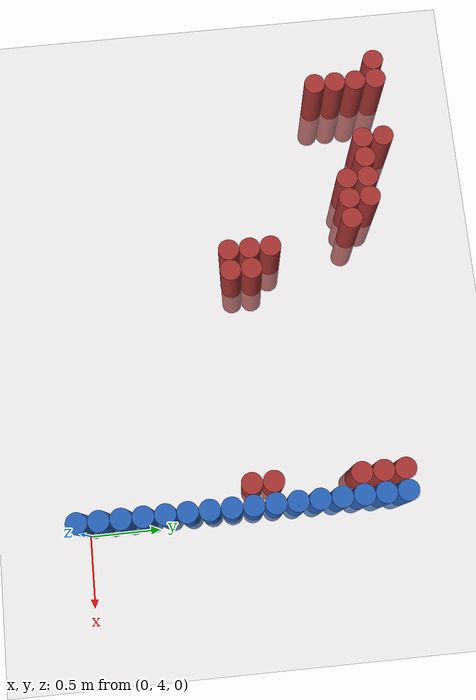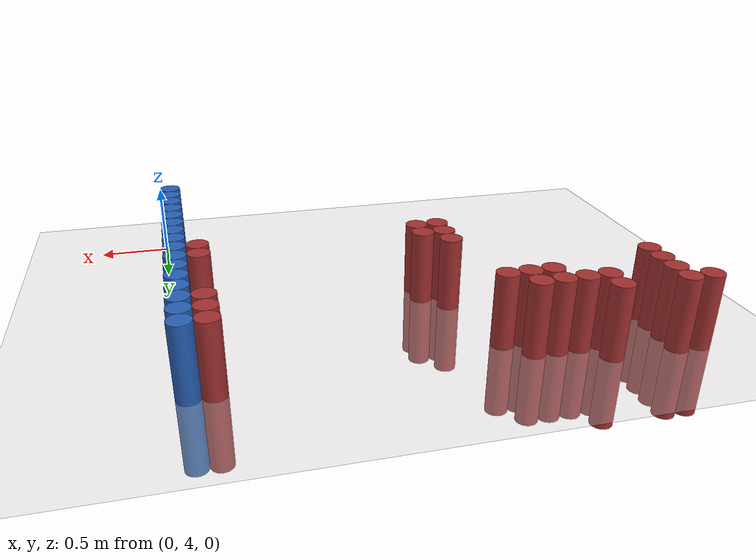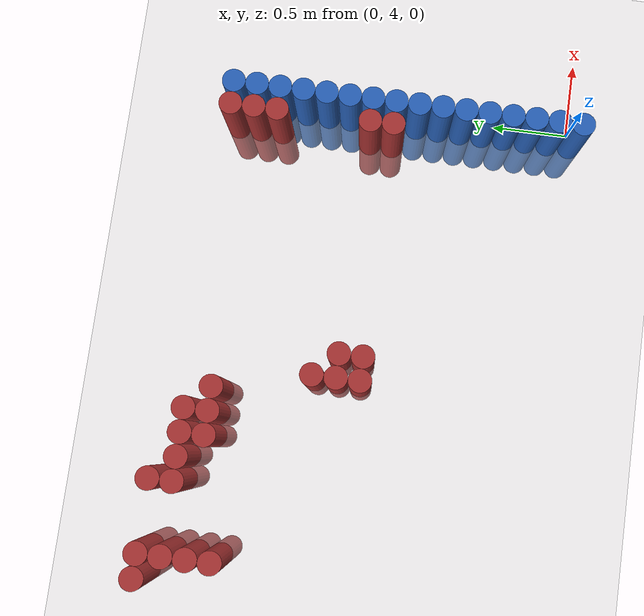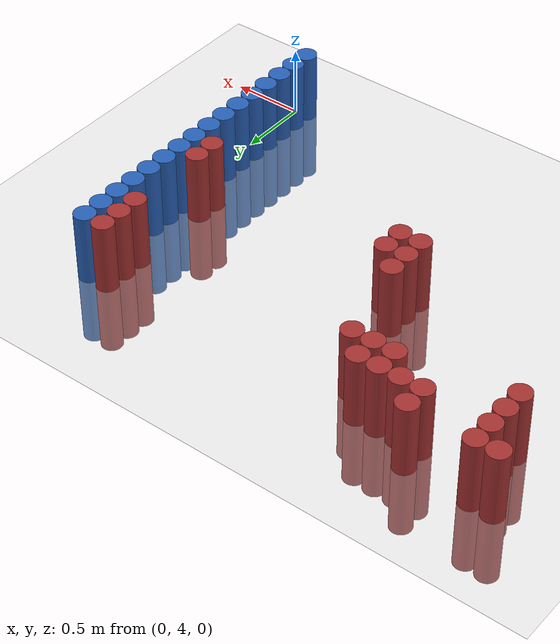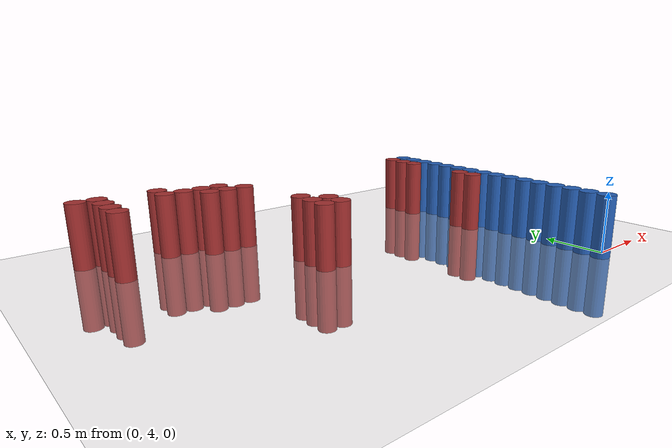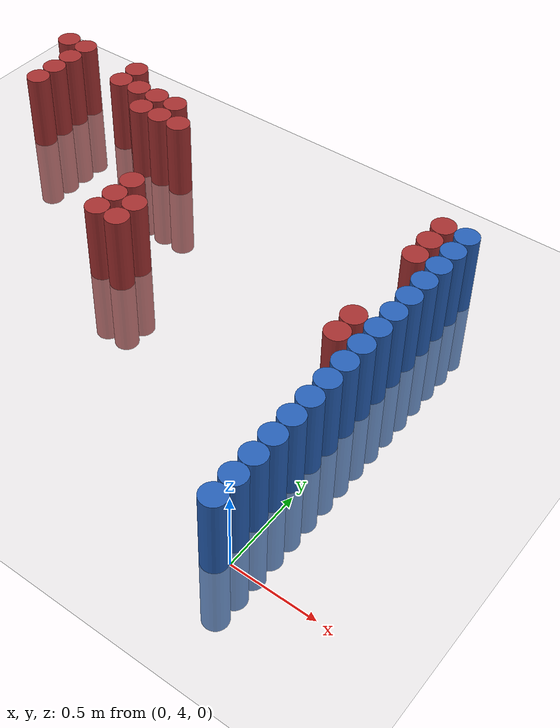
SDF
<sdf version="1.6">
 <world name="default">
  <model name="ground_plane">
   <static>1</static>
   <link name="link">
    <collision name="collision">
     <geometry><plane><normal>0 0 1</normal><size>100 100</size></plane></geometry>
     <surface><friction><ode><mu>100</mu><mu2>50</mu2></ode></friction></surface>
    </collision>
    <visual name="visual">
     <cast_shadows>0</cast_shadows>
     <geometry><plane><normal>0 0 1</normal><size>100 100</size></plane></geometry>
     <material>
      <script><uri>file://media/materials/scripts/gazebo.material</uri><name>Gazebo/Grey</name></script>
     </material>
    </visual>
   </link>
  </model>
  <model name="unit_cylinder_80">
   <static>1</static>
   <pose>-0.075000 3.975000 0.000000 0.000000 0.000000 0.000000</pose>
   <link name="link">
    <inertial>
     <mass>1</mass>
     <inertia><ixx>0.145833</ixx><ixy>0</ixy><ixz>0</ixz><iyy>0.145833</iyy><iyz>0</iyz><izz>0.125</izz></inertia>
    </inertial>
    <collision name="collision">
     <geometry><cylinder><radius>0.075000</radius><length>1</length></cylinder></geometry>
    </collision>
    <visual name="visual">
     <geometry><cylinder><radius>0.075000</radius><length>1</length></cylinder></geometry>
     <material>
      <ambient>0.152000 0.379000 0.720000 1</ambient>
      <diffuse>0.152000 0.379000 0.720000 1</diffuse>
     </material>
     <material>
      <script><name>Gazebo/Grey</name><uri>file://media/materials/scripts/gazebo.material</uri></script>
     </material>
    </visual>
    <sensor name="sensor_contact" type="contact"><contact><collision>collision</collision></contact></sensor>
   </link>
   <plugin filename="gz-sim-touchplugin-system" name="gz::sim::systems::TouchPlugin">
    <target>robot</target>
    <namespace>robot</namespace>
    <time>0.001</time>
    <enabled>true</enabled>
   </plugin>
  </model>
  <model name="unit_cylinder_82">
   <static>1</static>
   <pose>-0.075000 4.125000 0.000000 0.000000 0.000000 0.000000</pose>
   <link name="link">
    <inertial>
     <mass>1</mass>
     <inertia><ixx>0.145833</ixx><ixy>0</ixy><ixz>0</ixz><iyy>0.145833</iyy><iyz>0</iyz><izz>0.125</izz></inertia>
    </inertial>
    <collision name="collision">
     <geometry><cylinder><radius>0.075000</radius><length>1</length></cylinder></geometry>
    </collision>
    <visual name="visual">
     <geometry><cylinder><radius>0.075000</radius><length>1</length></cylinder></geometry>
     <material>
      <ambient>0.152000 0.379000 0.720000 1</ambient>
      <diffuse>0.152000 0.379000 0.720000 1</diffuse>
     </material>
     <material>
      <script><name>Gazebo/Grey</name><uri>file://media/materials/scripts/gazebo.material</uri></script>
     </material>
    </visual>
    <sensor name="sensor_contact" type="contact"><contact><collision>collision</collision></contact></sensor>
   </link>
   <plugin filename="gz-sim-touchplugin-system" name="gz::sim::systems::TouchPlugin">
    <target>robot</target>
    <namespace>robot</namespace>
    <time>0.001</time>
    <enabled>true</enabled>
   </plugin>
  </model>
  <model name="unit_cylinder_84">
   <static>1</static>
   <pose>-0.075000 4.275000 0.000000 0.000000 0.000000 0.000000</pose>
   <link name="link">
    <inertial>
     <mass>1</mass>
     <inertia><ixx>0.145833</ixx><ixy>0</ixy><ixz>0</ixz><iyy>0.145833</iyy><iyz>0</iyz><izz>0.125</izz></inertia>
    </inertial>
    <collision name="collision">
     <geometry><cylinder><radius>0.075000</radius><length>1</length></cylinder></geometry>
    </collision>
    <visual name="visual">
     <geometry><cylinder><radius>0.075000</radius><length>1</length></cylinder></geometry>
     <material>
      <ambient>0.152000 0.379000 0.720000 1</ambient>
      <diffuse>0.152000 0.379000 0.720000 1</diffuse>
     </material>
     <material>
      <script><name>Gazebo/Grey</name><uri>file://media/materials/scripts/gazebo.material</uri></script>
     </material>
    </visual>
    <sensor name="sensor_contact" type="contact"><contact><collision>collision</collision></contact></sensor>
   </link>
   <plugin filename="gz-sim-touchplugin-system" name="gz::sim::systems::TouchPlugin">
    <target>robot</target>
    <namespace>robot</namespace>
    <time>0.001</time>
    <enabled>true</enabled>
   </plugin>
  </model>
  <model name="unit_cylinder_86">
   <static>1</static>
   <pose>-0.075000 4.425000 0.000000 0.000000 0.000000 0.000000</pose>
   <link name="link">
    <inertial>
     <mass>1</mass>
     <inertia><ixx>0.145833</ixx><ixy>0</ixy><ixz>0</ixz><iyy>0.145833</iyy><iyz>0</iyz><izz>0.125</izz></inertia>
    </inertial>
    <collision name="collision">
     <geometry><cylinder><radius>0.075000</radius><length>1</length></cylinder></geometry>
    </collision>
    <visual name="visual">
     <geometry><cylinder><radius>0.075000</radius><length>1</length></cylinder></geometry>
     <material>
      <ambient>0.152000 0.379000 0.720000 1</ambient>
      <diffuse>0.152000 0.379000 0.720000 1</diffuse>
     </material>
     <material>
      <script><name>Gazebo/Grey</name><uri>file://media/materials/scripts/gazebo.material</uri></script>
     </material>
    </visual>
    <sensor name="sensor_contact" type="contact"><contact><collision>collision</collision></contact></sensor>
   </link>
   <plugin filename="gz-sim-touchplugin-system" name="gz::sim::systems::TouchPlugin">
    <target>robot</target>
    <namespace>robot</namespace>
    <time>0.001</time>
    <enabled>true</enabled>
   </plugin>
  </model>
  <model name="unit_cylinder_88">
   <static>1</static>
   <pose>-0.075000 4.575000 0.000000 0.000000 0.000000 0.000000</pose>
   <link name="link">
    <inertial>
     <mass>1</mass>
     <inertia><ixx>0.145833</ixx><ixy>0</ixy><ixz>0</ixz><iyy>0.145833</iyy><iyz>0</iyz><izz>0.125</izz></inertia>
    </inertial>
    <collision name="collision">
     <geometry><cylinder><radius>0.075000</radius><length>1</length></cylinder></geometry>
    </collision>
    <visual name="visual">
     <geometry><cylinder><radius>0.075000</radius><length>1</length></cylinder></geometry>
     <material>
      <ambient>0.152000 0.379000 0.720000 1</ambient>
      <diffuse>0.152000 0.379000 0.720000 1</diffuse>
     </material>
     <material>
      <script><name>Gazebo/Grey</name><uri>file://media/materials/scripts/gazebo.material</uri></script>
     </material>
    </visual>
    <sensor name="sensor_contact" type="contact"><contact><collision>collision</collision></contact></sensor>
   </link>
   <plugin filename="gz-sim-touchplugin-system" name="gz::sim::systems::TouchPlugin">
    <target>robot</target>
    <namespace>robot</namespace>
    <time>0.001</time>
    <enabled>true</enabled>
   </plugin>
  </model>
  <model name="unit_cylinder_90">
   <static>1</static>
   <pose>-0.075000 4.725000 0.000000 0.000000 0.000000 0.000000</pose>
   <link name="link">
    <inertial>
     <mass>1</mass>
     <inertia><ixx>0.145833</ixx><ixy>0</ixy><ixz>0</ixz><iyy>0.145833</iyy><iyz>0</iyz><izz>0.125</izz></inertia>
    </inertial>
    <collision name="collision">
     <geometry><cylinder><radius>0.075000</radius><length>1</length></cylinder></geometry>
    </collision>
    <visual name="visual">
     <geometry><cylinder><radius>0.075000</radius><length>1</length></cylinder></geometry>
     <material>
      <ambient>0.152000 0.379000 0.720000 1</ambient>
      <diffuse>0.152000 0.379000 0.720000 1</diffuse>
     </material>
     <material>
      <script><name>Gazebo/Grey</name><uri>file://media/materials/scripts/gazebo.material</uri></script>
     </material>
    </visual>
    <sensor name="sensor_contact" type="contact"><contact><collision>collision</collision></contact></sensor>
   </link>
   <plugin filename="gz-sim-touchplugin-system" name="gz::sim::systems::TouchPlugin">
    <target>robot</target>
    <namespace>robot</namespace>
    <time>0.001</time>
    <enabled>true</enabled>
   </plugin>
  </model>
  <model name="unit_cylinder_92">
   <static>1</static>
   <pose>-0.075000 4.875000 0.000000 0.000000 0.000000 0.000000</pose>
   <link name="link">
    <inertial>
     <mass>1</mass>
     <inertia><ixx>0.145833</ixx><ixy>0</ixy><ixz>0</ixz><iyy>0.145833</iyy><iyz>0</iyz><izz>0.125</izz></inertia>
    </inertial>
    <collision name="collision">
     <geometry><cylinder><radius>0.075000</radius><length>1</length></cylinder></geometry>
    </collision>
    <visual name="visual">
     <geometry><cylinder><radius>0.075000</radius><length>1</length></cylinder></geometry>
     <material>
      <ambient>0.152000 0.379000 0.720000 1</ambient>
      <diffuse>0.152000 0.379000 0.720000 1</diffuse>
     </material>
     <material>
      <script><name>Gazebo/Grey</name><uri>file://media/materials/scripts/gazebo.material</uri></script>
     </material>
    </visual>
    <sensor name="sensor_contact" type="contact"><contact><collision>collision</collision></contact></sensor>
   </link>
   <plugin filename="gz-sim-touchplugin-system" name="gz::sim::systems::TouchPlugin">
    <target>robot</target>
    <namespace>robot</namespace>
    <time>0.001</time>
    <enabled>true</enabled>
   </plugin>
  </model>
  <model name="unit_cylinder_94">
   <static>1</static>
   <pose>-0.075000 5.025000 0.000000 0.000000 0.000000 0.000000</pose>
   <link name="link">
    <inertial>
     <mass>1</mass>
     <inertia><ixx>0.145833</ixx><ixy>0</ixy><ixz>0</ixz><iyy>0.145833</iyy><iyz>0</iyz><izz>0.125</izz></inertia>
    </inertial>
    <collision name="collision">
     <geometry><cylinder><radius>0.075000</radius><length>1</length></cylinder></geometry>
    </collision>
    <visual name="visual">
     <geometry><cylinder><radius>0.075000</radius><length>1</length></cylinder></geometry>
     <material>
      <ambient>0.152000 0.379000 0.720000 1</ambient>
      <diffuse>0.152000 0.379000 0.720000 1</diffuse>
     </material>
     <material>
      <script><name>Gazebo/Grey</name><uri>file://media/materials/scripts/gazebo.material</uri></script>
     </material>
    </visual>
    <sensor name="sensor_contact" type="contact"><contact><collision>collision</collision></contact></sensor>
   </link>
   <plugin filename="gz-sim-touchplugin-system" name="gz::sim::systems::TouchPlugin">
    <target>robot</target>
    <namespace>robot</namespace>
    <time>0.001</time>
    <enabled>true</enabled>
   </plugin>
  </model>
  <model name="unit_cylinder_197">
   <static>1</static>
   <pose>-3.225000 6.375000 0.000000 0.000000 0.000000 0.000000</pose>
   <link name="link">
    <inertial>
     <mass>1</mass>
     <inertia><ixx>0.145833</ixx><ixy>0</ixy><ixz>0</ixz><iyy>0.145833</iyy><iyz>0</iyz><izz>0.125</izz></inertia>
    </inertial>
    <collision name="collision">
     <geometry><cylinder><radius>0.075000</radius><length>1</length></cylinder></geometry>
    </collision>
    <visual name="visual">
     <geometry><cylinder><radius>0.075000</radius><length>1</length></cylinder></geometry>
     <material>
      <ambient>0.648000 0.192000 0.192000 1</ambient>
      <diffuse>0.648000 0.192000 0.192000 1</diffuse>
     </material>
     <material>
      <script><name>Gazebo/Grey</name><uri>file://media/materials/scripts/gazebo.material</uri></script>
     </material>
    </visual>
    <sensor name="sensor_contact" type="contact"><contact><collision>collision</collision></contact></sensor>
   </link>
   <plugin filename="gz-sim-touchplugin-system" name="gz::sim::systems::TouchPlugin">
    <target>robot</target>
    <namespace>robot</namespace>
    <time>0.001</time>
    <enabled>true</enabled>
   </plugin>
  </model>
  <model name="unit_cylinder_205">
   <static>1</static>
   <pose>-3.075000 5.925000 0.000000 0.000000 0.000000 0.000000</pose>
   <link name="link">
    <inertial>
     <mass>1</mass>
     <inertia><ixx>0.145833</ixx><ixy>0</ixy><ixz>0</ixz><iyy>0.145833</iyy><iyz>0</iyz><izz>0.125</izz></inertia>
    </inertial>
    <collision name="collision">
     <geometry><cylinder><radius>0.075000</radius><length>1</length></cylinder></geometry>
    </collision>
    <visual name="visual">
     <geometry><cylinder><radius>0.075000</radius><length>1</length></cylinder></geometry>
     <material>
      <ambient>0.648000 0.192000 0.192000 1</ambient>
      <diffuse>0.648000 0.192000 0.192000 1</diffuse>
     </material>
     <material>
      <script><name>Gazebo/Grey</name><uri>file://media/materials/scripts/gazebo.material</uri></script>
     </material>
    </visual>
    <sensor name="sensor_contact" type="contact"><contact><collision>collision</collision></contact></sensor>
   </link>
   <plugin filename="gz-sim-touchplugin-system" name="gz::sim::systems::TouchPlugin">
    <target>robot</target>
    <namespace>robot</namespace>
    <time>0.001</time>
    <enabled>true</enabled>
   </plugin>
  </model>
  <model name="unit_cylinder_206">
   <static>1</static>
   <pose>-3.075000 6.075000 0.000000 0.000000 0.000000 0.000000</pose>
   <link name="link">
    <inertial>
     <mass>1</mass>
     <inertia><ixx>0.145833</ixx><ixy>0</ixy><ixz>0</ixz><iyy>0.145833</iyy><iyz>0</iyz><izz>0.125</izz></inertia>
    </inertial>
    <collision name="collision">
     <geometry><cylinder><radius>0.075000</radius><length>1</length></cylinder></geometry>
    </collision>
    <visual name="visual">
     <geometry><cylinder><radius>0.075000</radius><length>1</length></cylinder></geometry>
     <material>
      <ambient>0.648000 0.192000 0.192000 1</ambient>
      <diffuse>0.648000 0.192000 0.192000 1</diffuse>
     </material>
     <material>
      <script><name>Gazebo/Grey</name><uri>file://media/materials/scripts/gazebo.material</uri></script>
     </material>
    </visual>
    <sensor name="sensor_contact" type="contact"><contact><collision>collision</collision></contact></sensor>
   </link>
   <plugin filename="gz-sim-touchplugin-system" name="gz::sim::systems::TouchPlugin">
    <target>robot</target>
    <namespace>robot</namespace>
    <time>0.001</time>
    <enabled>true</enabled>
   </plugin>
  </model>
  <model name="unit_cylinder_207">
   <static>1</static>
   <pose>-3.075000 6.225000 0.000000 0.000000 0.000000 0.000000</pose>
   <link name="link">
    <inertial>
     <mass>1</mass>
     <inertia><ixx>0.145833</ixx><ixy>0</ixy><ixz>0</ixz><iyy>0.145833</iyy><iyz>0</iyz><izz>0.125</izz></inertia>
    </inertial>
    <collision name="collision">
     <geometry><cylinder><radius>0.075000</radius><length>1</length></cylinder></geometry>
    </collision>
    <visual name="visual">
     <geometry><cylinder><radius>0.075000</radius><length>1</length></cylinder></geometry>
     <material>
      <ambient>0.648000 0.192000 0.192000 1</ambient>
      <diffuse>0.648000 0.192000 0.192000 1</diffuse>
     </material>
     <material>
      <script><name>Gazebo/Grey</name><uri>file://media/materials/scripts/gazebo.material</uri></script>
     </material>
    </visual>
    <sensor name="sensor_contact" type="contact"><contact><collision>collision</collision></contact></sensor>
   </link>
   <plugin filename="gz-sim-touchplugin-system" name="gz::sim::systems::TouchPlugin">
    <target>robot</target>
    <namespace>robot</namespace>
    <time>0.001</time>
    <enabled>true</enabled>
   </plugin>
  </model>
  <model name="unit_cylinder_208">
   <static>1</static>
   <pose>-3.075000 6.375000 0.000000 0.000000 0.000000 0.000000</pose>
   <link name="link">
    <inertial>
     <mass>1</mass>
     <inertia><ixx>0.145833</ixx><ixy>0</ixy><ixz>0</ixz><iyy>0.145833</iyy><iyz>0</iyz><izz>0.125</izz></inertia>
    </inertial>
    <collision name="collision">
     <geometry><cylinder><radius>0.075000</radius><length>1</length></cylinder></geometry>
    </collision>
    <visual name="visual">
     <geometry><cylinder><radius>0.075000</radius><length>1</length></cylinder></geometry>
     <material>
      <ambient>0.648000 0.192000 0.192000 1</ambient>
      <diffuse>0.648000 0.192000 0.192000 1</diffuse>
     </material>
     <material>
      <script><name>Gazebo/Grey</name><uri>file://media/materials/scripts/gazebo.material</uri></script>
     </material>
    </visual>
    <sensor name="sensor_contact" type="contact"><contact><collision>collision</collision></contact></sensor>
   </link>
   <plugin filename="gz-sim-touchplugin-system" name="gz::sim::systems::TouchPlugin">
    <target>robot</target>
    <namespace>robot</namespace>
    <time>0.001</time>
    <enabled>true</enabled>
   </plugin>
  </model>
  <model name="unit_cylinder_225">
   <static>1</static>
   <pose>-2.625000 6.225000 0.000000 0.000000 0.000000 0.000000</pose>
   <link name="link">
    <inertial>
     <mass>1</mass>
     <inertia><ixx>0.145833</ixx><ixy>0</ixy><ixz>0</ixz><iyy>0.145833</iyy><iyz>0</iyz><izz>0.125</izz></inertia>
    </inertial>
    <collision name="collision">
     <geometry><cylinder><radius>0.075000</radius><length>1</length></cylinder></geometry>
    </collision>
    <visual name="visual">
     <geometry><cylinder><radius>0.075000</radius><length>1</length></cylinder></geometry>
     <material>
      <ambient>0.648000 0.192000 0.192000 1</ambient>
      <diffuse>0.648000 0.192000 0.192000 1</diffuse>
     </material>
     <material>
      <script><name>Gazebo/Grey</name><uri>file://media/materials/scripts/gazebo.material</uri></script>
     </material>
    </visual>
    <sensor name="sensor_contact" type="contact"><contact><collision>collision</collision></contact></sensor>
   </link>
   <plugin filename="gz-sim-touchplugin-system" name="gz::sim::systems::TouchPlugin">
    <target>robot</target>
    <namespace>robot</namespace>
    <time>0.001</time>
    <enabled>true</enabled>
   </plugin>
  </model>
  <model name="unit_cylinder_226">
   <static>1</static>
   <pose>-2.625000 6.375000 0.000000 0.000000 0.000000 0.000000</pose>
   <link name="link">
    <inertial>
     <mass>1</mass>
     <inertia><ixx>0.145833</ixx><ixy>0</ixy><ixz>0</ixz><iyy>0.145833</iyy><iyz>0</iyz><izz>0.125</izz></inertia>
    </inertial>
    <collision name="collision">
     <geometry><cylinder><radius>0.075000</radius><length>1</length></cylinder></geometry>
    </collision>
    <visual name="visual">
     <geometry><cylinder><radius>0.075000</radius><length>1</length></cylinder></geometry>
     <material>
      <ambient>0.648000 0.192000 0.192000 1</ambient>
      <diffuse>0.648000 0.192000 0.192000 1</diffuse>
     </material>
     <material>
      <script><name>Gazebo/Grey</name><uri>file://media/materials/scripts/gazebo.material</uri></script>
     </material>
    </visual>
    <sensor name="sensor_contact" type="contact"><contact><collision>collision</collision></contact></sensor>
   </link>
   <plugin filename="gz-sim-touchplugin-system" name="gz::sim::systems::TouchPlugin">
    <target>robot</target>
    <namespace>robot</namespace>
    <time>0.001</time>
    <enabled>true</enabled>
   </plugin>
  </model>
  <model name="unit_cylinder_235">
   <static>1</static>
   <pose>-2.475000 6.225000 0.000000 0.000000 0.000000 0.000000</pose>
   <link name="link">
    <inertial>
     <mass>1</mass>
     <inertia><ixx>0.145833</ixx><ixy>0</ixy><ixz>0</ixz><iyy>0.145833</iyy><iyz>0</iyz><izz>0.125</izz></inertia>
    </inertial>
    <collision name="collision">
     <geometry><cylinder><radius>0.075000</radius><length>1</length></cylinder></geometry>
    </collision>
    <visual name="visual">
     <geometry><cylinder><radius>0.075000</radius><length>1</length></cylinder></geometry>
     <material>
      <ambient>0.648000 0.192000 0.192000 1</ambient>
      <diffuse>0.648000 0.192000 0.192000 1</diffuse>
     </material>
     <material>
      <script><name>Gazebo/Grey</name><uri>file://media/materials/scripts/gazebo.material</uri></script>
     </material>
    </visual>
    <sensor name="sensor_contact" type="contact"><contact><collision>collision</collision></contact></sensor>
   </link>
   <plugin filename="gz-sim-touchplugin-system" name="gz::sim::systems::TouchPlugin">
    <target>robot</target>
    <namespace>robot</namespace>
    <time>0.001</time>
    <enabled>true</enabled>
   </plugin>
  </model>
  <model name="unit_cylinder_247">
   <static>1</static>
   <pose>-2.325000 6.075000 0.000000 0.000000 0.000000 0.000000</pose>
   <link name="link">
    <inertial>
     <mass>1</mass>
     <inertia><ixx>0.145833</ixx><ixy>0</ixy><ixz>0</ixz><iyy>0.145833</iyy><iyz>0</iyz><izz>0.125</izz></inertia>
    </inertial>
    <collision name="collision">
     <geometry><cylinder><radius>0.075000</radius><length>1</length></cylinder></geometry>
    </collision>
    <visual name="visual">
     <geometry><cylinder><radius>0.075000</radius><length>1</length></cylinder></geometry>
     <material>
      <ambient>0.648000 0.192000 0.192000 1</ambient>
      <diffuse>0.648000 0.192000 0.192000 1</diffuse>
     </material>
     <material>
      <script><name>Gazebo/Grey</name><uri>file://media/materials/scripts/gazebo.material</uri></script>
     </material>
    </visual>
    <sensor name="sensor_contact" type="contact"><contact><collision>collision</collision></contact></sensor>
   </link>
   <plugin filename="gz-sim-touchplugin-system" name="gz::sim::systems::TouchPlugin">
    <target>robot</target>
    <namespace>robot</namespace>
    <time>0.001</time>
    <enabled>true</enabled>
   </plugin>
  </model>
  <model name="unit_cylinder_248">
   <static>1</static>
   <pose>-2.325000 6.225000 0.000000 0.000000 0.000000 0.000000</pose>
   <link name="link">
    <inertial>
     <mass>1</mass>
     <inertia><ixx>0.145833</ixx><ixy>0</ixy><ixz>0</ixz><iyy>0.145833</iyy><iyz>0</iyz><izz>0.125</izz></inertia>
    </inertial>
    <collision name="collision">
     <geometry><cylinder><radius>0.075000</radius><length>1</length></cylinder></geometry>
    </collision>
    <visual name="visual">
     <geometry><cylinder><radius>0.075000</radius><length>1</length></cylinder></geometry>
     <material>
      <ambient>0.648000 0.192000 0.192000 1</ambient>
      <diffuse>0.648000 0.192000 0.192000 1</diffuse>
     </material>
     <material>
      <script><name>Gazebo/Grey</name><uri>file://media/materials/scripts/gazebo.material</uri></script>
     </material>
    </visual>
    <sensor name="sensor_contact" type="contact"><contact><collision>collision</collision></contact></sensor>
   </link>
   <plugin filename="gz-sim-touchplugin-system" name="gz::sim::systems::TouchPlugin">
    <target>robot</target>
    <namespace>robot</namespace>
    <time>0.001</time>
    <enabled>true</enabled>
   </plugin>
  </model>
  <model name="unit_cylinder_256">
   <static>1</static>
   <pose>-2.175000 6.075000 0.000000 0.000000 0.000000 0.000000</pose>
   <link name="link">
    <inertial>
     <mass>1</mass>
     <inertia><ixx>0.145833</ixx><ixy>0</ixy><ixz>0</ixz><iyy>0.145833</iyy><iyz>0</iyz><izz>0.125</izz></inertia>
    </inertial>
    <collision name="collision">
     <geometry><cylinder><radius>0.075000</radius><length>1</length></cylinder></geometry>
    </collision>
    <visual name="visual">
     <geometry><cylinder><radius>0.075000</radius><length>1</length></cylinder></geometry>
     <material>
      <ambient>0.648000 0.192000 0.192000 1</ambient>
      <diffuse>0.648000 0.192000 0.192000 1</diffuse>
     </material>
     <material>
      <script><name>Gazebo/Grey</name><uri>file://media/materials/scripts/gazebo.material</uri></script>
     </material>
    </visual>
    <sensor name="sensor_contact" type="contact"><contact><collision>collision</collision></contact></sensor>
   </link>
   <plugin filename="gz-sim-touchplugin-system" name="gz::sim::systems::TouchPlugin">
    <target>robot</target>
    <namespace>robot</namespace>
    <time>0.001</time>
    <enabled>true</enabled>
   </plugin>
  </model>
  <model name="unit_cylinder_257">
   <static>1</static>
   <pose>-2.175000 6.225000 0.000000 0.000000 0.000000 0.000000</pose>
   <link name="link">
    <inertial>
     <mass>1</mass>
     <inertia><ixx>0.145833</ixx><ixy>0</ixy><ixz>0</ixz><iyy>0.145833</iyy><iyz>0</iyz><izz>0.125</izz></inertia>
    </inertial>
    <collision name="collision">
     <geometry><cylinder><radius>0.075000</radius><length>1</length></cylinder></geometry>
    </collision>
    <visual name="visual">
     <geometry><cylinder><radius>0.075000</radius><length>1</length></cylinder></geometry>
     <material>
      <ambient>0.648000 0.192000 0.192000 1</ambient>
      <diffuse>0.648000 0.192000 0.192000 1</diffuse>
     </material>
     <material>
      <script><name>Gazebo/Grey</name><uri>file://media/materials/scripts/gazebo.material</uri></script>
     </material>
    </visual>
    <sensor name="sensor_contact" type="contact"><contact><collision>collision</collision></contact></sensor>
   </link>
   <plugin filename="gz-sim-touchplugin-system" name="gz::sim::systems::TouchPlugin">
    <target>robot</target>
    <namespace>robot</namespace>
    <time>0.001</time>
    <enabled>true</enabled>
   </plugin>
  </model>
  <model name="unit_cylinder_265">
   <static>1</static>
   <pose>-2.025000 6.075000 0.000000 0.000000 0.000000 0.000000</pose>
   <link name="link">
    <inertial>
     <mass>1</mass>
     <inertia><ixx>0.145833</ixx><ixy>0</ixy><ixz>0</ixz><iyy>0.145833</iyy><iyz>0</iyz><izz>0.125</izz></inertia>
    </inertial>
    <collision name="collision">
     <geometry><cylinder><radius>0.075000</radius><length>1</length></cylinder></geometry>
    </collision>
    <visual name="visual">
     <geometry><cylinder><radius>0.075000</radius><length>1</length></cylinder></geometry>
     <material>
      <ambient>0.648000 0.192000 0.192000 1</ambient>
      <diffuse>0.648000 0.192000 0.192000 1</diffuse>
     </material>
     <material>
      <script><name>Gazebo/Grey</name><uri>file://media/materials/scripts/gazebo.material</uri></script>
     </material>
    </visual>
    <sensor name="sensor_contact" type="contact"><contact><collision>collision</collision></contact></sensor>
   </link>
   <plugin filename="gz-sim-touchplugin-system" name="gz::sim::systems::TouchPlugin">
    <target>robot</target>
    <namespace>robot</namespace>
    <time>0.001</time>
    <enabled>true</enabled>
   </plugin>
  </model>
  <model name="unit_cylinder_274">
   <static>1</static>
   <pose>-1.875000 5.175000 0.000000 0.000000 0.000000 0.000000</pose>
   <link name="link">
    <inertial>
     <mass>1</mass>
     <inertia><ixx>0.145833</ixx><ixy>0</ixy><ixz>0</ixz><iyy>0.145833</iyy><iyz>0</iyz><izz>0.125</izz></inertia>
    </inertial>
    <collision name="collision">
     <geometry><cylinder><radius>0.075000</radius><length>1</length></cylinder></geometry>
    </collision>
    <visual name="visual">
     <geometry><cylinder><radius>0.075000</radius><length>1</length></cylinder></geometry>
     <material>
      <ambient>0.648000 0.192000 0.192000 1</ambient>
      <diffuse>0.648000 0.192000 0.192000 1</diffuse>
     </material>
     <material>
      <script><name>Gazebo/Grey</name><uri>file://media/materials/scripts/gazebo.material</uri></script>
     </material>
    </visual>
    <sensor name="sensor_contact" type="contact"><contact><collision>collision</collision></contact></sensor>
   </link>
   <plugin filename="gz-sim-touchplugin-system" name="gz::sim::systems::TouchPlugin">
    <target>robot</target>
    <namespace>robot</namespace>
    <time>0.001</time>
    <enabled>true</enabled>
   </plugin>
  </model>
  <model name="unit_cylinder_275">
   <static>1</static>
   <pose>-1.875000 5.325000 0.000000 0.000000 0.000000 0.000000</pose>
   <link name="link">
    <inertial>
     <mass>1</mass>
     <inertia><ixx>0.145833</ixx><ixy>0</ixy><ixz>0</ixz><iyy>0.145833</iyy><iyz>0</iyz><izz>0.125</izz></inertia>
    </inertial>
    <collision name="collision">
     <geometry><cylinder><radius>0.075000</radius><length>1</length></cylinder></geometry>
    </collision>
    <visual name="visual">
     <geometry><cylinder><radius>0.075000</radius><length>1</length></cylinder></geometry>
     <material>
      <ambient>0.648000 0.192000 0.192000 1</ambient>
      <diffuse>0.648000 0.192000 0.192000 1</diffuse>
     </material>
     <material>
      <script><name>Gazebo/Grey</name><uri>file://media/materials/scripts/gazebo.material</uri></script>
     </material>
    </visual>
    <sensor name="sensor_contact" type="contact"><contact><collision>collision</collision></contact></sensor>
   </link>
   <plugin filename="gz-sim-touchplugin-system" name="gz::sim::systems::TouchPlugin">
    <target>robot</target>
    <namespace>robot</namespace>
    <time>0.001</time>
    <enabled>true</enabled>
   </plugin>
  </model>
  <model name="unit_cylinder_276">
   <static>1</static>
   <pose>-1.875000 5.475000 0.000000 0.000000 0.000000 0.000000</pose>
   <link name="link">
    <inertial>
     <mass>1</mass>
     <inertia><ixx>0.145833</ixx><ixy>0</ixy><ixz>0</ixz><iyy>0.145833</iyy><iyz>0</iyz><izz>0.125</izz></inertia>
    </inertial>
    <collision name="collision">
     <geometry><cylinder><radius>0.075000</radius><length>1</length></cylinder></geometry>
    </collision>
    <visual name="visual">
     <geometry><cylinder><radius>0.075000</radius><length>1</length></cylinder></geometry>
     <material>
      <ambient>0.648000 0.192000 0.192000 1</ambient>
      <diffuse>0.648000 0.192000 0.192000 1</diffuse>
     </material>
     <material>
      <script><name>Gazebo/Grey</name><uri>file://media/materials/scripts/gazebo.material</uri></script>
     </material>
    </visual>
    <sensor name="sensor_contact" type="contact"><contact><collision>collision</collision></contact></sensor>
   </link>
   <plugin filename="gz-sim-touchplugin-system" name="gz::sim::systems::TouchPlugin">
    <target>robot</target>
    <namespace>robot</namespace>
    <time>0.001</time>
    <enabled>true</enabled>
   </plugin>
  </model>
  <model name="unit_cylinder_284">
   <static>1</static>
   <pose>-1.725000 5.175000 0.000000 0.000000 0.000000 0.000000</pose>
   <link name="link">
    <inertial>
     <mass>1</mass>
     <inertia><ixx>0.145833</ixx><ixy>0</ixy><ixz>0</ixz><iyy>0.145833</iyy><iyz>0</iyz><izz>0.125</izz></inertia>
    </inertial>
    <collision name="collision">
     <geometry><cylinder><radius>0.075000</radius><length>1</length></cylinder></geometry>
    </collision>
    <visual name="visual">
     <geometry><cylinder><radius>0.075000</radius><length>1</length></cylinder></geometry>
     <material>
      <ambient>0.648000 0.192000 0.192000 1</ambient>
      <diffuse>0.648000 0.192000 0.192000 1</diffuse>
     </material>
     <material>
      <script><name>Gazebo/Grey</name><uri>file://media/materials/scripts/gazebo.material</uri></script>
     </material>
    </visual>
    <sensor name="sensor_contact" type="contact"><contact><collision>collision</collision></contact></sensor>
   </link>
   <plugin filename="gz-sim-touchplugin-system" name="gz::sim::systems::TouchPlugin">
    <target>robot</target>
    <namespace>robot</namespace>
    <time>0.001</time>
    <enabled>true</enabled>
   </plugin>
  </model>
  <model name="unit_cylinder_285">
   <static>1</static>
   <pose>-1.725000 5.325000 0.000000 0.000000 0.000000 0.000000</pose>
   <link name="link">
    <inertial>
     <mass>1</mass>
     <inertia><ixx>0.145833</ixx><ixy>0</ixy><ixz>0</ixz><iyy>0.145833</iyy><iyz>0</iyz><izz>0.125</izz></inertia>
    </inertial>
    <collision name="collision">
     <geometry><cylinder><radius>0.075000</radius><length>1</length></cylinder></geometry>
    </collision>
    <visual name="visual">
     <geometry><cylinder><radius>0.075000</radius><length>1</length></cylinder></geometry>
     <material>
      <ambient>0.648000 0.192000 0.192000 1</ambient>
      <diffuse>0.648000 0.192000 0.192000 1</diffuse>
     </material>
     <material>
      <script><name>Gazebo/Grey</name><uri>file://media/materials/scripts/gazebo.material</uri></script>
     </material>
    </visual>
    <sensor name="sensor_contact" type="contact"><contact><collision>collision</collision></contact></sensor>
   </link>
   <plugin filename="gz-sim-touchplugin-system" name="gz::sim::systems::TouchPlugin">
    <target>robot</target>
    <namespace>robot</namespace>
    <time>0.001</time>
    <enabled>true</enabled>
   </plugin>
  </model>
  <model name="unit_cylinder_317">
   <static>1</static>
   <pose>-0.225000 5.175000 0.000000 0.000000 0.000000 0.000000</pose>
   <link name="link">
    <inertial>
     <mass>1</mass>
     <inertia><ixx>0.145833</ixx><ixy>0</ixy><ixz>0</ixz><iyy>0.145833</iyy><iyz>0</iyz><izz>0.125</izz></inertia>
    </inertial>
    <collision name="collision">
     <geometry><cylinder><radius>0.075000</radius><length>1</length></cylinder></geometry>
    </collision>
    <visual name="visual">
     <geometry><cylinder><radius>0.075000</radius><length>1</length></cylinder></geometry>
     <material>
      <ambient>0.648000 0.192000 0.192000 1</ambient>
      <diffuse>0.648000 0.192000 0.192000 1</diffuse>
     </material>
     <material>
      <script><name>Gazebo/Grey</name><uri>file://media/materials/scripts/gazebo.material</uri></script>
     </material>
    </visual>
    <sensor name="sensor_contact" type="contact"><contact><collision>collision</collision></contact></sensor>
   </link>
   <plugin filename="gz-sim-touchplugin-system" name="gz::sim::systems::TouchPlugin">
    <target>robot</target>
    <namespace>robot</namespace>
    <time>0.001</time>
    <enabled>true</enabled>
   </plugin>
  </model>
  <model name="unit_cylinder_318">
   <static>1</static>
   <pose>-0.225000 5.325000 0.000000 0.000000 0.000000 0.000000</pose>
   <link name="link">
    <inertial>
     <mass>1</mass>
     <inertia><ixx>0.145833</ixx><ixy>0</ixy><ixz>0</ixz><iyy>0.145833</iyy><iyz>0</iyz><izz>0.125</izz></inertia>
    </inertial>
    <collision name="collision">
     <geometry><cylinder><radius>0.075000</radius><length>1</length></cylinder></geometry>
    </collision>
    <visual name="visual">
     <geometry><cylinder><radius>0.075000</radius><length>1</length></cylinder></geometry>
     <material>
      <ambient>0.648000 0.192000 0.192000 1</ambient>
      <diffuse>0.648000 0.192000 0.192000 1</diffuse>
     </material>
     <material>
      <script><name>Gazebo/Grey</name><uri>file://media/materials/scripts/gazebo.material</uri></script>
     </material>
    </visual>
    <sensor name="sensor_contact" type="contact"><contact><collision>collision</collision></contact></sensor>
   </link>
   <plugin filename="gz-sim-touchplugin-system" name="gz::sim::systems::TouchPlugin">
    <target>robot</target>
    <namespace>robot</namespace>
    <time>0.001</time>
    <enabled>true</enabled>
   </plugin>
  </model>
  <model name="unit_cylinder_319">
   <static>1</static>
   <pose>-0.225000 5.925000 0.000000 0.000000 0.000000 0.000000</pose>
   <link name="link">
    <inertial>
     <mass>1</mass>
     <inertia><ixx>0.145833</ixx><ixy>0</ixy><ixz>0</ixz><iyy>0.145833</iyy><iyz>0</iyz><izz>0.125</izz></inertia>
    </inertial>
    <collision name="collision">
     <geometry><cylinder><radius>0.075000</radius><length>1</length></cylinder></geometry>
    </collision>
    <visual name="visual">
     <geometry><cylinder><radius>0.075000</radius><length>1</length></cylinder></geometry>
     <material>
      <ambient>0.648000 0.192000 0.192000 1</ambient>
      <diffuse>0.648000 0.192000 0.192000 1</diffuse>
     </material>
     <material>
      <script><name>Gazebo/Grey</name><uri>file://media/materials/scripts/gazebo.material</uri></script>
     </material>
    </visual>
    <sensor name="sensor_contact" type="contact"><contact><collision>collision</collision></contact></sensor>
   </link>
   <plugin filename="gz-sim-touchplugin-system" name="gz::sim::systems::TouchPlugin">
    <target>robot</target>
    <namespace>robot</namespace>
    <time>0.001</time>
    <enabled>true</enabled>
   </plugin>
  </model>
  <model name="unit_cylinder_320">
   <static>1</static>
   <pose>-0.225000 6.075000 0.000000 0.000000 0.000000 0.000000</pose>
   <link name="link">
    <inertial>
     <mass>1</mass>
     <inertia><ixx>0.145833</ixx><ixy>0</ixy><ixz>0</ixz><iyy>0.145833</iyy><iyz>0</iyz><izz>0.125</izz></inertia>
    </inertial>
    <collision name="collision">
     <geometry><cylinder><radius>0.075000</radius><length>1</length></cylinder></geometry>
    </collision>
    <visual name="visual">
     <geometry><cylinder><radius>0.075000</radius><length>1</length></cylinder></geometry>
     <material>
      <ambient>0.648000 0.192000 0.192000 1</ambient>
      <diffuse>0.648000 0.192000 0.192000 1</diffuse>
     </material>
     <material>
      <script><name>Gazebo/Grey</name><uri>file://media/materials/scripts/gazebo.material</uri></script>
     </material>
    </visual>
    <sensor name="sensor_contact" type="contact"><contact><collision>collision</collision></contact></sensor>
   </link>
   <plugin filename="gz-sim-touchplugin-system" name="gz::sim::systems::TouchPlugin">
    <target>robot</target>
    <namespace>robot</namespace>
    <time>0.001</time>
    <enabled>true</enabled>
   </plugin>
  </model>
  <model name="unit_cylinder_321">
   <static>1</static>
   <pose>-0.225000 6.225000 0.000000 0.000000 0.000000 0.000000</pose>
   <link name="link">
    <inertial>
     <mass>1</mass>
     <inertia><ixx>0.145833</ixx><ixy>0</ixy><ixz>0</ixz><iyy>0.145833</iyy><iyz>0</iyz><izz>0.125</izz></inertia>
    </inertial>
    <collision name="collision">
     <geometry><cylinder><radius>0.075000</radius><length>1</length></cylinder></geometry>
    </collision>
    <visual name="visual">
     <geometry><cylinder><radius>0.075000</radius><length>1</length></cylinder></geometry>
     <material>
      <ambient>0.648000 0.192000 0.192000 1</ambient>
      <diffuse>0.648000 0.192000 0.192000 1</diffuse>
     </material>
     <material>
      <script><name>Gazebo/Grey</name><uri>file://media/materials/scripts/gazebo.material</uri></script>
     </material>
    </visual>
    <sensor name="sensor_contact" type="contact"><contact><collision>collision</collision></contact></sensor>
   </link>
   <plugin filename="gz-sim-touchplugin-system" name="gz::sim::systems::TouchPlugin">
    <target>robot</target>
    <namespace>robot</namespace>
    <time>0.001</time>
    <enabled>true</enabled>
   </plugin>
  </model>
  <model name="unit_cylinder_327">
   <static>1</static>
   <pose>-0.075000 5.175000 0.000000 0.000000 0.000000 0.000000</pose>
   <link name="link">
    <inertial>
     <mass>1</mass>
     <inertia><ixx>0.145833</ixx><ixy>0</ixy><ixz>0</ixz><iyy>0.145833</iyy><iyz>0</iyz><izz>0.125</izz></inertia>
    </inertial>
    <collision name="collision">
     <geometry><cylinder><radius>0.075000</radius><length>1</length></cylinder></geometry>
    </collision>
    <visual name="visual">
     <geometry><cylinder><radius>0.075000</radius><length>1</length></cylinder></geometry>
     <material>
      <ambient>0.152000 0.379000 0.720000 1</ambient>
      <diffuse>0.152000 0.379000 0.720000 1</diffuse>
     </material>
     <material>
      <script><name>Gazebo/Grey</name><uri>file://media/materials/scripts/gazebo.material</uri></script>
     </material>
    </visual>
    <sensor name="sensor_contact" type="contact"><contact><collision>collision</collision></contact></sensor>
   </link>
   <plugin filename="gz-sim-touchplugin-system" name="gz::sim::systems::TouchPlugin">
    <target>robot</target>
    <namespace>robot</namespace>
    <time>0.001</time>
    <enabled>true</enabled>
   </plugin>
  </model>
  <model name="unit_cylinder_328">
   <static>1</static>
   <pose>-0.075000 5.325000 0.000000 0.000000 0.000000 0.000000</pose>
   <link name="link">
    <inertial>
     <mass>1</mass>
     <inertia><ixx>0.145833</ixx><ixy>0</ixy><ixz>0</ixz><iyy>0.145833</iyy><iyz>0</iyz><izz>0.125</izz></inertia>
    </inertial>
    <collision name="collision">
     <geometry><cylinder><radius>0.075000</radius><length>1</length></cylinder></geometry>
    </collision>
    <visual name="visual">
     <geometry><cylinder><radius>0.075000</radius><length>1</length></cylinder></geometry>
     <material>
      <ambient>0.152000 0.379000 0.720000 1</ambient>
      <diffuse>0.152000 0.379000 0.720000 1</diffuse>
     </material>
     <material>
      <script><name>Gazebo/Grey</name><uri>file://media/materials/scripts/gazebo.material</uri></script>
     </material>
    </visual>
    <sensor name="sensor_contact" type="contact"><contact><collision>collision</collision></contact></sensor>
   </link>
   <plugin filename="gz-sim-touchplugin-system" name="gz::sim::systems::TouchPlugin">
    <target>robot</target>
    <namespace>robot</namespace>
    <time>0.001</time>
    <enabled>true</enabled>
   </plugin>
  </model>
  <model name="unit_cylinder_329">
   <static>1</static>
   <pose>-0.075000 5.475000 0.000000 0.000000 0.000000 0.000000</pose>
   <link name="link">
    <inertial>
     <mass>1</mass>
     <inertia><ixx>0.145833</ixx><ixy>0</ixy><ixz>0</ixz><iyy>0.145833</iyy><iyz>0</iyz><izz>0.125</izz></inertia>
    </inertial>
    <collision name="collision">
     <geometry><cylinder><radius>0.075000</radius><length>1</length></cylinder></geometry>
    </collision>
    <visual name="visual">
     <geometry><cylinder><radius>0.075000</radius><length>1</length></cylinder></geometry>
     <material>
      <ambient>0.152000 0.379000 0.720000 1</ambient>
      <diffuse>0.152000 0.379000 0.720000 1</diffuse>
     </material>
     <material>
      <script><name>Gazebo/Grey</name><uri>file://media/materials/scripts/gazebo.material</uri></script>
     </material>
    </visual>
    <sensor name="sensor_contact" type="contact"><contact><collision>collision</collision></contact></sensor>
   </link>
   <plugin filename="gz-sim-touchplugin-system" name="gz::sim::systems::TouchPlugin">
    <target>robot</target>
    <namespace>robot</namespace>
    <time>0.001</time>
    <enabled>true</enabled>
   </plugin>
  </model>
  <model name="unit_cylinder_330">
   <static>1</static>
   <pose>-0.075000 5.625000 0.000000 0.000000 0.000000 0.000000</pose>
   <link name="link">
    <inertial>
     <mass>1</mass>
     <inertia><ixx>0.145833</ixx><ixy>0</ixy><ixz>0</ixz><iyy>0.145833</iyy><iyz>0</iyz><izz>0.125</izz></inertia>
    </inertial>
    <collision name="collision">
     <geometry><cylinder><radius>0.075000</radius><length>1</length></cylinder></geometry>
    </collision>
    <visual name="visual">
     <geometry><cylinder><radius>0.075000</radius><length>1</length></cylinder></geometry>
     <material>
      <ambient>0.152000 0.379000 0.720000 1</ambient>
      <diffuse>0.152000 0.379000 0.720000 1</diffuse>
     </material>
     <material>
      <script><name>Gazebo/Grey</name><uri>file://media/materials/scripts/gazebo.material</uri></script>
     </material>
    </visual>
    <sensor name="sensor_contact" type="contact"><contact><collision>collision</collision></contact></sensor>
   </link>
   <plugin filename="gz-sim-touchplugin-system" name="gz::sim::systems::TouchPlugin">
    <target>robot</target>
    <namespace>robot</namespace>
    <time>0.001</time>
    <enabled>true</enabled>
   </plugin>
  </model>
  <model name="unit_cylinder_331">
   <static>1</static>
   <pose>-0.075000 5.775000 0.000000 0.000000 0.000000 0.000000</pose>
   <link name="link">
    <inertial>
     <mass>1</mass>
     <inertia><ixx>0.145833</ixx><ixy>0</ixy><ixz>0</ixz><iyy>0.145833</iyy><iyz>0</iyz><izz>0.125</izz></inertia>
    </inertial>
    <collision name="collision">
     <geometry><cylinder><radius>0.075000</radius><length>1</length></cylinder></geometry>
    </collision>
    <visual name="visual">
     <geometry><cylinder><radius>0.075000</radius><length>1</length></cylinder></geometry>
     <material>
      <ambient>0.152000 0.379000 0.720000 1</ambient>
      <diffuse>0.152000 0.379000 0.720000 1</diffuse>
     </material>
     <material>
      <script><name>Gazebo/Grey</name><uri>file://media/materials/scripts/gazebo.material</uri></script>
     </material>
    </visual>
    <sensor name="sensor_contact" type="contact"><contact><collision>collision</collision></contact></sensor>
   </link>
   <plugin filename="gz-sim-touchplugin-system" name="gz::sim::systems::TouchPlugin">
    <target>robot</target>
    <namespace>robot</namespace>
    <time>0.001</time>
    <enabled>true</enabled>
   </plugin>
  </model>
  <model name="unit_cylinder_332">
   <static>1</static>
   <pose>-0.075000 5.925000 0.000000 0.000000 0.000000 0.000000</pose>
   <link name="link">
    <inertial>
     <mass>1</mass>
     <inertia><ixx>0.145833</ixx><ixy>0</ixy><ixz>0</ixz><iyy>0.145833</iyy><iyz>0</iyz><izz>0.125</izz></inertia>
    </inertial>
    <collision name="collision">
     <geometry><cylinder><radius>0.075000</radius><length>1</length></cylinder></geometry>
    </collision>
    <visual name="visual">
     <geometry><cylinder><radius>0.075000</radius><length>1</length></cylinder></geometry>
     <material>
      <ambient>0.152000 0.379000 0.720000 1</ambient>
      <diffuse>0.152000 0.379000 0.720000 1</diffuse>
     </material>
     <material>
      <script><name>Gazebo/Grey</name><uri>file://media/materials/scripts/gazebo.material</uri></script>
     </material>
    </visual>
    <sensor name="sensor_contact" type="contact"><contact><collision>collision</collision></contact></sensor>
   </link>
   <plugin filename="gz-sim-touchplugin-system" name="gz::sim::systems::TouchPlugin">
    <target>robot</target>
    <namespace>robot</namespace>
    <time>0.001</time>
    <enabled>true</enabled>
   </plugin>
  </model>
  <model name="unit_cylinder_333">
   <static>1</static>
   <pose>-0.075000 6.075000 0.000000 0.000000 0.000000 0.000000</pose>
   <link name="link">
    <inertial>
     <mass>1</mass>
     <inertia><ixx>0.145833</ixx><ixy>0</ixy><ixz>0</ixz><iyy>0.145833</iyy><iyz>0</iyz><izz>0.125</izz></inertia>
    </inertial>
    <collision name="collision">
     <geometry><cylinder><radius>0.075000</radius><length>1</length></cylinder></geometry>
    </collision>
    <visual name="visual">
     <geometry><cylinder><radius>0.075000</radius><length>1</length></cylinder></geometry>
     <material>
      <ambient>0.152000 0.379000 0.720000 1</ambient>
      <diffuse>0.152000 0.379000 0.720000 1</diffuse>
     </material>
     <material>
      <script><name>Gazebo/Grey</name><uri>file://media/materials/scripts/gazebo.material</uri></script>
     </material>
    </visual>
    <sensor name="sensor_contact" type="contact"><contact><collision>collision</collision></contact></sensor>
   </link>
   <plugin filename="gz-sim-touchplugin-system" name="gz::sim::systems::TouchPlugin">
    <target>robot</target>
    <namespace>robot</namespace>
    <time>0.001</time>
    <enabled>true</enabled>
   </plugin>
  </model>
  <model name="unit_cylinder_334">
   <static>1</static>
   <pose>-0.075000 6.225000 0.000000 0.000000 0.000000 0.000000</pose>
   <link name="link">
    <inertial>
     <mass>1</mass>
     <inertia><ixx>0.145833</ixx><ixy>0</ixy><ixz>0</ixz><iyy>0.145833</iyy><iyz>0</iyz><izz>0.125</izz></inertia>
    </inertial>
    <collision name="collision">
     <geometry><cylinder><radius>0.075000</radius><length>1</length></cylinder></geometry>
    </collision>
    <visual name="visual">
     <geometry><cylinder><radius>0.075000</radius><length>1</length></cylinder></geometry>
     <material>
      <ambient>0.152000 0.379000 0.720000 1</ambient>
      <diffuse>0.152000 0.379000 0.720000 1</diffuse>
     </material>
     <material>
      <script><name>Gazebo/Grey</name><uri>file://media/materials/scripts/gazebo.material</uri></script>
     </material>
    </visual>
    <sensor name="sensor_contact" type="contact"><contact><collision>collision</collision></contact></sensor>
   </link>
   <plugin filename="gz-sim-touchplugin-system" name="gz::sim::systems::TouchPlugin">
    <target>robot</target>
    <namespace>robot</namespace>
    <time>0.001</time>
    <enabled>true</enabled>
   </plugin>
  </model>
 </world>
</sdf>
